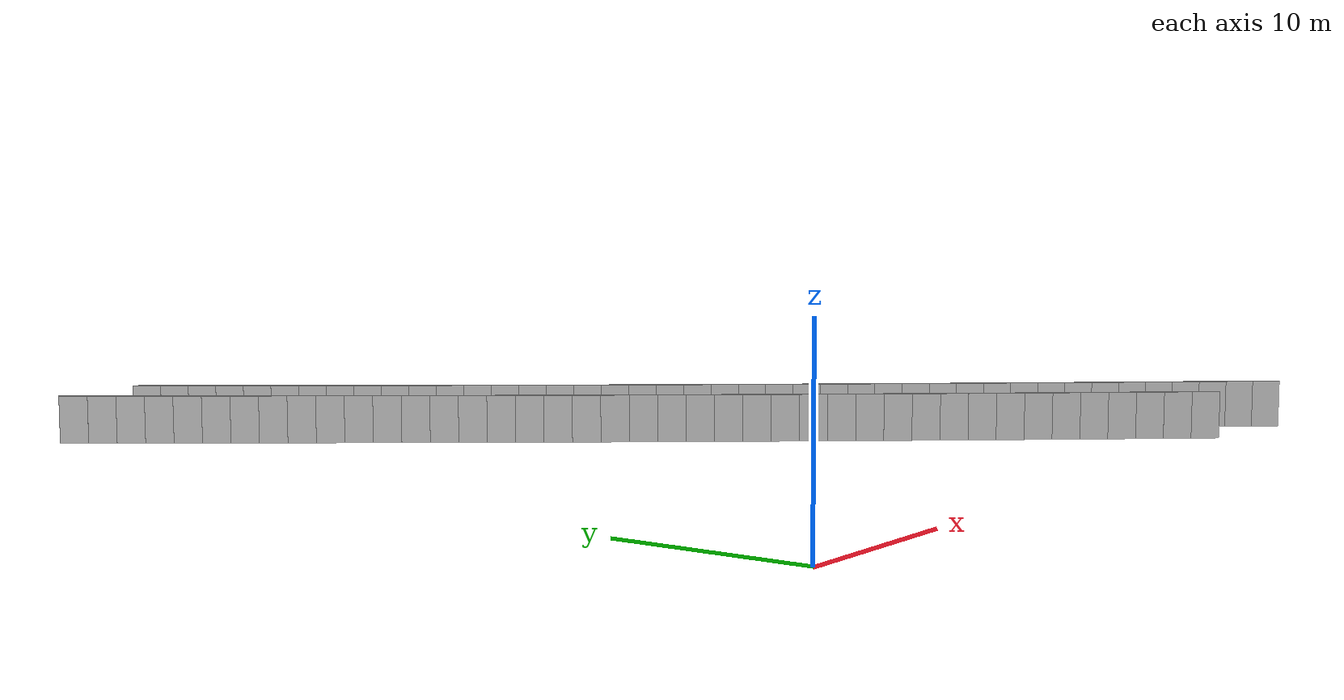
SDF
<?xml version="1.0" ?>
<sdf version="1.6">
  <model name="sps_0711">
    <pose frame="">0 0 0 0 -0 0</pose>
    <static>1</static>
    <self_collide>0</self_collide>
    <allow_auto_disable>0</allow_auto_disable>
    <link name="Wall8401">
      <kinematic>0</kinematic>
      <gravity>1</gravity>
      <self_collide>0</self_collide>
      <collision name="collision">
        <geometry>
          <box>
            <size>1.49896 0.15 2.5</size>
          </box>
        </geometry>
        <pose frame="">0 0 0 0 -0 0</pose>
      </collision>
      <visual name="visual">
        <geometry>
          <box>
            <size>1.49896 0.15 2.5</size>
          </box>
        </geometry>
        <pose frame="">0 0 0 0 -0 0</pose>
        <cast_shadows>1</cast_shadows>
        <transparency>0.0</transparency>
      </visual>
      <pose frame="">5.06295 49.0742 1.25 0 0 -0.961245</pose>
    </link>
    <link name="Wall8402">
      <kinematic>0</kinematic>
      <gravity>1</gravity>
      <self_collide>0</self_collide>
      <collision name="collision">
        <geometry>
          <box>
            <size>1.49904 0.15 2.5</size>
          </box>
        </geometry>
        <pose frame="">0 0 0 0 -0 0</pose>
      </collision>
      <visual name="visual">
        <geometry>
          <box>
            <size>1.49904 0.15 2.5</size>
          </box>
        </geometry>
        <pose frame="">0 0 0 0 -0 0</pose>
        <cast_shadows>1</cast_shadows>
        <transparency>0.0</transparency>
      </visual>
      <pose frame="">5.92205 47.8458 1.25 0 0 -0.959743</pose>
    </link>
    <link name="Wall8403">
      <kinematic>0</kinematic>
      <gravity>1</gravity>
      <self_collide>0</self_collide>
      <collision name="collision">
        <geometry>
          <box>
            <size>1.49888 0.15 2.5</size>
          </box>
        </geometry>
        <pose frame="">0 0 0 0 -0 0</pose>
      </collision>
      <visual name="visual">
        <geometry>
          <box>
            <size>1.49888 0.15 2.5</size>
          </box>
        </geometry>
        <pose frame="">0 0 0 0 -0 0</pose>
        <cast_shadows>1</cast_shadows>
        <transparency>0.0</transparency>
      </visual>
      <pose frame="">6.78295 46.6187 1.25 0 0 -0.958272</pose>
    </link>
    <link name="Wall8404">
      <kinematic>0</kinematic>
      <gravity>1</gravity>
      <self_collide>0</self_collide>
      <collision name="collision">
        <geometry>
          <box>
            <size>1.49908 0.15 2.5</size>
          </box>
        </geometry>
        <pose frame="">0 0 0 0 -0 0</pose>
      </collision>
      <visual name="visual">
        <geometry>
          <box>
            <size>1.49908 0.15 2.5</size>
          </box>
        </geometry>
        <pose frame="">0 0 0 0 -0 0</pose>
        <cast_shadows>1</cast_shadows>
        <transparency>0.0</transparency>
      </visual>
      <pose frame="">7.64584 45.393 1.25 0 0 -0.956525</pose>
    </link>
    <link name="Wall8405">
      <kinematic>0</kinematic>
      <gravity>1</gravity>
      <self_collide>0</self_collide>
      <collision name="collision">
        <geometry>
          <box>
            <size>1.4988 0.15 2.5</size>
          </box>
        </geometry>
        <pose frame="">0 0 0 0 -0 0</pose>
      </collision>
      <visual name="visual">
        <geometry>
          <box>
            <size>1.4988 0.15 2.5</size>
          </box>
        </geometry>
        <pose frame="">0 0 0 0 -0 0</pose>
        <cast_shadows>1</cast_shadows>
        <transparency>0.0</transparency>
      </visual>
      <pose frame="">8.51064 44.1687 1.25 0 0 -0.955096</pose>
    </link>
    <link name="Wall8406">
      <kinematic>0</kinematic>
      <gravity>1</gravity>
      <self_collide>0</self_collide>
      <collision name="collision">
        <geometry>
          <box>
            <size>1.49897 0.15 2.5</size>
          </box>
        </geometry>
        <pose frame="">0 0 0 0 -0 0</pose>
      </collision>
      <visual name="visual">
        <geometry>
          <box>
            <size>1.49897 0.15 2.5</size>
          </box>
        </geometry>
        <pose frame="">0 0 0 0 -0 0</pose>
        <cast_shadows>1</cast_shadows>
        <transparency>0.0</transparency>
      </visual>
      <pose frame="">9.37734 42.9458 1.25 0 0 -0.953382</pose>
    </link>
    <link name="Wall8407">
      <kinematic>0</kinematic>
      <gravity>1</gravity>
      <self_collide>0</self_collide>
      <collision name="collision">
        <geometry>
          <box>
            <size>1.49895 0.15 2.5</size>
          </box>
        </geometry>
        <pose frame="">0 0 0 0 -0 0</pose>
      </collision>
      <visual name="visual">
        <geometry>
          <box>
            <size>1.49895 0.15 2.5</size>
          </box>
        </geometry>
        <pose frame="">0 0 0 0 -0 0</pose>
        <cast_shadows>1</cast_shadows>
        <transparency>0.0</transparency>
      </visual>
      <pose frame="">10.2461 41.7243 1.25 0 0 -0.951721</pose>
    </link>
    <link name="Wall8408">
      <kinematic>0</kinematic>
      <gravity>1</gravity>
      <self_collide>0</self_collide>
      <collision name="collision">
        <geometry>
          <box>
            <size>1.49863 0.15 2.5</size>
          </box>
        </geometry>
        <pose frame="">0 0 0 0 -0 0</pose>
      </collision>
      <visual name="visual">
        <geometry>
          <box>
            <size>1.49863 0.15 2.5</size>
          </box>
        </geometry>
        <pose frame="">0 0 0 0 -0 0</pose>
        <cast_shadows>1</cast_shadows>
        <transparency>0.0</transparency>
      </visual>
      <pose frame="">11.1168 40.5043 1.25 0 0 -0.950268</pose>
    </link>
    <link name="Wall8409">
      <kinematic>0</kinematic>
      <gravity>1</gravity>
      <self_collide>0</self_collide>
      <collision name="collision">
        <geometry>
          <box>
            <size>1.49886 0.15 2.5</size>
          </box>
        </geometry>
        <pose frame="">0 0 0 0 -0 0</pose>
      </collision>
      <visual name="visual">
        <geometry>
          <box>
            <size>1.49886 0.15 2.5</size>
          </box>
        </geometry>
        <pose frame="">0 0 0 0 -0 0</pose>
        <cast_shadows>1</cast_shadows>
        <transparency>0.0</transparency>
      </visual>
      <pose frame="">11.9892 39.2857 1.25 0 0 -0.948578</pose>
    </link>
    <link name="Wall8410">
      <kinematic>0</kinematic>
      <gravity>1</gravity>
      <self_collide>0</self_collide>
      <collision name="collision">
        <geometry>
          <box>
            <size>1.49884 0.15 2.5</size>
          </box>
        </geometry>
        <pose frame="">0 0 0 0 -0 0</pose>
      </collision>
      <visual name="visual">
        <geometry>
          <box>
            <size>1.49884 0.15 2.5</size>
          </box>
        </geometry>
        <pose frame="">0 0 0 0 -0 0</pose>
        <cast_shadows>1</cast_shadows>
        <transparency>0.0</transparency>
      </visual>
      <pose frame="">12.8638 38.0684 1.25 0 0 -0.947063</pose>
    </link>
    <link name="Wall8411">
      <kinematic>0</kinematic>
      <gravity>1</gravity>
      <self_collide>0</self_collide>
      <collision name="collision">
        <geometry>
          <box>
            <size>1.49899 0.15 2.5</size>
          </box>
        </geometry>
        <pose frame="">0 0 0 0 -0 0</pose>
      </collision>
      <visual name="visual">
        <geometry>
          <box>
            <size>1.49899 0.15 2.5</size>
          </box>
        </geometry>
        <pose frame="">0 0 0 0 -0 0</pose>
        <cast_shadows>1</cast_shadows>
        <transparency>0.0</transparency>
      </visual>
      <pose frame="">13.7402 36.8524 1.25 0 0 -0.94553</pose>
    </link>
    <link name="Wall8412">
      <kinematic>0</kinematic>
      <gravity>1</gravity>
      <self_collide>0</self_collide>
      <collision name="collision">
        <geometry>
          <box>
            <size>1.49903 0.15 2.5</size>
          </box>
        </geometry>
        <pose frame="">0 0 0 0 -0 0</pose>
      </collision>
      <visual name="visual">
        <geometry>
          <box>
            <size>1.49903 0.15 2.5</size>
          </box>
        </geometry>
        <pose frame="">0 0 0 0 -0 0</pose>
        <cast_shadows>1</cast_shadows>
        <transparency>0.0</transparency>
      </visual>
      <pose frame="">14.6186 35.6377 1.25 0 0 -0.943892</pose>
    </link>
    <link name="Wall8413">
      <kinematic>0</kinematic>
      <gravity>1</gravity>
      <self_collide>0</self_collide>
      <collision name="collision">
        <geometry>
          <box>
            <size>1.49902 0.15 2.5</size>
          </box>
        </geometry>
        <pose frame="">0 0 0 0 -0 0</pose>
      </collision>
      <visual name="visual">
        <geometry>
          <box>
            <size>1.49902 0.15 2.5</size>
          </box>
        </geometry>
        <pose frame="">0 0 0 0 -0 0</pose>
        <cast_shadows>1</cast_shadows>
        <transparency>0.0</transparency>
      </visual>
      <pose frame="">15.4989 34.4244 1.25 0 0 -0.942377</pose>
    </link>
    <link name="Wall8414">
      <kinematic>0</kinematic>
      <gravity>1</gravity>
      <self_collide>0</self_collide>
      <collision name="collision">
        <geometry>
          <box>
            <size>1.49888 0.15 2.5</size>
          </box>
        </geometry>
        <pose frame="">0 0 0 0 -0 0</pose>
      </collision>
      <visual name="visual">
        <geometry>
          <box>
            <size>1.49888 0.15 2.5</size>
          </box>
        </geometry>
        <pose frame="">0 0 0 0 -0 0</pose>
        <cast_shadows>1</cast_shadows>
        <transparency>0.0</transparency>
      </visual>
      <pose frame="">16.381 33.2125 1.25 0 0 -0.940847</pose>
    </link>
    <link name="Wall8415">
      <kinematic>0</kinematic>
      <gravity>1</gravity>
      <self_collide>0</self_collide>
      <collision name="collision">
        <geometry>
          <box>
            <size>1.49879 0.15 2.5</size>
          </box>
        </geometry>
        <pose frame="">0 0 0 0 -0 0</pose>
      </collision>
      <visual name="visual">
        <geometry>
          <box>
            <size>1.49879 0.15 2.5</size>
          </box>
        </geometry>
        <pose frame="">0 0 0 0 -0 0</pose>
        <cast_shadows>1</cast_shadows>
        <transparency>0.0</transparency>
      </visual>
      <pose frame="">17.265 32.0021 1.25 0 0 -0.939138</pose>
    </link>
    <link name="Wall8416">
      <kinematic>0</kinematic>
      <gravity>1</gravity>
      <self_collide>0</self_collide>
      <collision name="collision">
        <geometry>
          <box>
            <size>1.49896 0.15 2.5</size>
          </box>
        </geometry>
        <pose frame="">0 0 0 0 -0 0</pose>
      </collision>
      <visual name="visual">
        <geometry>
          <box>
            <size>1.49896 0.15 2.5</size>
          </box>
        </geometry>
        <pose frame="">0 0 0 0 -0 0</pose>
        <cast_shadows>1</cast_shadows>
        <transparency>0.0</transparency>
      </visual>
      <pose frame="">18.151 30.7931 1.25 0 0 -0.937605</pose>
    </link>
    <link name="Wall8417">
      <kinematic>0</kinematic>
      <gravity>1</gravity>
      <self_collide>0</self_collide>
      <collision name="collision">
        <geometry>
          <box>
            <size>1.49911 0.15 2.5</size>
          </box>
        </geometry>
        <pose frame="">0 0 0 0 -0 0</pose>
      </collision>
      <visual name="visual">
        <geometry>
          <box>
            <size>1.49911 0.15 2.5</size>
          </box>
        </geometry>
        <pose frame="">0 0 0 0 -0 0</pose>
        <cast_shadows>1</cast_shadows>
        <transparency>0.0</transparency>
      </visual>
      <pose frame="">19.0388 29.5853 1.25 0 0 -0.936163</pose>
    </link>
    <link name="Wall8418">
      <kinematic>0</kinematic>
      <gravity>1</gravity>
      <self_collide>0</self_collide>
      <collision name="collision">
        <geometry>
          <box>
            <size>1.49903 0.15 2.5</size>
          </box>
        </geometry>
        <pose frame="">0 0 0 0 -0 0</pose>
      </collision>
      <visual name="visual">
        <geometry>
          <box>
            <size>1.49903 0.15 2.5</size>
          </box>
        </geometry>
        <pose frame="">0 0 0 0 -0 0</pose>
        <cast_shadows>1</cast_shadows>
        <transparency>0.0</transparency>
      </visual>
      <pose frame="">19.9286 28.3789 1.25 0 0 -0.934453</pose>
    </link>
    <link name="Wall8419">
      <kinematic>0</kinematic>
      <gravity>1</gravity>
      <self_collide>0</self_collide>
      <collision name="collision">
        <geometry>
          <box>
            <size>1.49894 0.15 2.5</size>
          </box>
        </geometry>
        <pose frame="">0 0 0 0 -0 0</pose>
      </collision>
      <visual name="visual">
        <geometry>
          <box>
            <size>1.49894 0.15 2.5</size>
          </box>
        </geometry>
        <pose frame="">0 0 0 0 -0 0</pose>
        <cast_shadows>1</cast_shadows>
        <transparency>0.0</transparency>
      </visual>
      <pose frame="">20.8204 27.174 1.25 0 0 -0.93289</pose>
    </link>
    <link name="Wall8420">
      <kinematic>0</kinematic>
      <gravity>1</gravity>
      <self_collide>0</self_collide>
      <collision name="collision">
        <geometry>
          <box>
            <size>1.49902 0.15 2.5</size>
          </box>
        </geometry>
        <pose frame="">0 0 0 0 -0 0</pose>
      </collision>
      <visual name="visual">
        <geometry>
          <box>
            <size>1.49902 0.15 2.5</size>
          </box>
        </geometry>
        <pose frame="">0 0 0 0 -0 0</pose>
        <cast_shadows>1</cast_shadows>
        <transparency>0.0</transparency>
      </visual>
      <pose frame="">21.714 25.9705 1.25 0 0 -0.93131</pose>
    </link>
    <link name="Wall8421">
      <kinematic>0</kinematic>
      <gravity>1</gravity>
      <self_collide>0</self_collide>
      <collision name="collision">
        <geometry>
          <box>
            <size>1.49895 0.15 2.5</size>
          </box>
        </geometry>
        <pose frame="">0 0 0 0 -0 0</pose>
      </collision>
      <visual name="visual">
        <geometry>
          <box>
            <size>1.49895 0.15 2.5</size>
          </box>
        </geometry>
        <pose frame="">0 0 0 0 -0 0</pose>
        <cast_shadows>1</cast_shadows>
        <transparency>0.0</transparency>
      </visual>
      <pose frame="">22.6095 24.7684 1.25 0 0 -0.929803</pose>
    </link>
    <link name="Wall8422">
      <kinematic>0</kinematic>
      <gravity>1</gravity>
      <self_collide>0</self_collide>
      <collision name="collision">
        <geometry>
          <box>
            <size>1.49907 0.15 2.5</size>
          </box>
        </geometry>
        <pose frame="">0 0 0 0 -0 0</pose>
      </collision>
      <visual name="visual">
        <geometry>
          <box>
            <size>1.49907 0.15 2.5</size>
          </box>
        </geometry>
        <pose frame="">0 0 0 0 -0 0</pose>
        <cast_shadows>1</cast_shadows>
        <transparency>0.0</transparency>
      </visual>
      <pose frame="">23.5069 23.5677 1.25 0 0 -0.928134</pose>
    </link>
    <link name="Wall8423">
      <kinematic>0</kinematic>
      <gravity>1</gravity>
      <self_collide>0</self_collide>
      <collision name="collision">
        <geometry>
          <box>
            <size>1.49893 0.15 2.5</size>
          </box>
        </geometry>
        <pose frame="">0 0 0 0 -0 0</pose>
      </collision>
      <visual name="visual">
        <geometry>
          <box>
            <size>1.49893 0.15 2.5</size>
          </box>
        </geometry>
        <pose frame="">0 0 0 0 -0 0</pose>
        <cast_shadows>1</cast_shadows>
        <transparency>0.0</transparency>
      </visual>
      <pose frame="">24.4063 22.3685 1.25 0 0 -0.926432</pose>
    </link>
    <link name="Wall8424">
      <kinematic>0</kinematic>
      <gravity>1</gravity>
      <self_collide>0</self_collide>
      <collision name="collision">
        <geometry>
          <box>
            <size>1.49892 0.15 2.5</size>
          </box>
        </geometry>
        <pose frame="">0 0 0 0 -0 0</pose>
      </collision>
      <visual name="visual">
        <geometry>
          <box>
            <size>1.49892 0.15 2.5</size>
          </box>
        </geometry>
        <pose frame="">0 0 0 0 -0 0</pose>
        <cast_shadows>1</cast_shadows>
        <transparency>0.0</transparency>
      </visual>
      <pose frame="">25.3075 21.1708 1.25 0 0 -0.92495</pose>
    </link>
    <link name="Wall8425">
      <kinematic>0</kinematic>
      <gravity>1</gravity>
      <self_collide>0</self_collide>
      <collision name="collision">
        <geometry>
          <box>
            <size>1.49889 0.15 2.5</size>
          </box>
        </geometry>
        <pose frame="">0 0 0 0 -0 0</pose>
      </collision>
      <visual name="visual">
        <geometry>
          <box>
            <size>1.49889 0.15 2.5</size>
          </box>
        </geometry>
        <pose frame="">0 0 0 0 -0 0</pose>
        <cast_shadows>1</cast_shadows>
        <transparency>0.0</transparency>
      </visual>
      <pose frame="">26.2107 19.9745 1.25 0 0 -0.923353</pose>
    </link>
    <link name="Wall8426">
      <kinematic>0</kinematic>
      <gravity>1</gravity>
      <self_collide>0</self_collide>
      <collision name="collision">
        <geometry>
          <box>
            <size>1.49885 0.15 2.5</size>
          </box>
        </geometry>
        <pose frame="">0 0 0 0 -0 0</pose>
      </collision>
      <visual name="visual">
        <geometry>
          <box>
            <size>1.49885 0.15 2.5</size>
          </box>
        </geometry>
        <pose frame="">0 0 0 0 -0 0</pose>
        <cast_shadows>1</cast_shadows>
        <transparency>0.0</transparency>
      </visual>
      <pose frame="">27.1156 18.7796 1.25 0 0 -0.921904</pose>
    </link>
    <link name="Wall8427">
      <kinematic>0</kinematic>
      <gravity>1</gravity>
      <self_collide>0</self_collide>
      <collision name="collision">
        <geometry>
          <box>
            <size>1.49884 0.15 2.5</size>
          </box>
        </geometry>
        <pose frame="">0 0 0 0 -0 0</pose>
      </collision>
      <visual name="visual">
        <geometry>
          <box>
            <size>1.49884 0.15 2.5</size>
          </box>
        </geometry>
        <pose frame="">0 0 0 0 -0 0</pose>
        <cast_shadows>1</cast_shadows>
        <transparency>0.0</transparency>
      </visual>
      <pose frame="">28.0224 17.5862 1.25 0 0 -0.920161</pose>
    </link>
    <link name="Wall8428">
      <kinematic>0</kinematic>
      <gravity>1</gravity>
      <self_collide>0</self_collide>
      <collision name="collision">
        <geometry>
          <box>
            <size>1.49906 0.15 2.5</size>
          </box>
        </geometry>
        <pose frame="">0 0 0 0 -0 0</pose>
      </collision>
      <visual name="visual">
        <geometry>
          <box>
            <size>1.49906 0.15 2.5</size>
          </box>
        </geometry>
        <pose frame="">0 0 0 0 -0 0</pose>
        <cast_shadows>1</cast_shadows>
        <transparency>0.0</transparency>
      </visual>
      <pose frame="">28.9312 16.3942 1.25 0 0 -0.918631</pose>
    </link>
    <link name="Wall8429">
      <kinematic>0</kinematic>
      <gravity>1</gravity>
      <self_collide>0</self_collide>
      <collision name="collision">
        <geometry>
          <box>
            <size>1.49902 0.15 2.5</size>
          </box>
        </geometry>
        <pose frame="">0 0 0 0 -0 0</pose>
      </collision>
      <visual name="visual">
        <geometry>
          <box>
            <size>1.49902 0.15 2.5</size>
          </box>
        </geometry>
        <pose frame="">0 0 0 0 -0 0</pose>
        <cast_shadows>1</cast_shadows>
        <transparency>0.0</transparency>
      </visual>
      <pose frame="">29.8418 15.2035 1.25 0 0 -0.917124</pose>
    </link>
    <link name="Wall8430">
      <kinematic>0</kinematic>
      <gravity>1</gravity>
      <self_collide>0</self_collide>
      <collision name="collision">
        <geometry>
          <box>
            <size>1.49886 0.15 2.5</size>
          </box>
        </geometry>
        <pose frame="">0 0 0 0 -0 0</pose>
      </collision>
      <visual name="visual">
        <geometry>
          <box>
            <size>1.49886 0.15 2.5</size>
          </box>
        </geometry>
        <pose frame="">0 0 0 0 -0 0</pose>
        <cast_shadows>1</cast_shadows>
        <transparency>0.0</transparency>
      </visual>
      <pose frame="">30.7544 14.0143 1.25 0 0 -0.915453</pose>
    </link>
    <link name="Wall8431">
      <kinematic>0</kinematic>
      <gravity>1</gravity>
      <self_collide>0</self_collide>
      <collision name="collision">
        <geometry>
          <box>
            <size>1.49895 0.15 2.5</size>
          </box>
        </geometry>
        <pose frame="">0 0 0 0 -0 0</pose>
      </collision>
      <visual name="visual">
        <geometry>
          <box>
            <size>1.49895 0.15 2.5</size>
          </box>
        </geometry>
        <pose frame="">0 0 0 0 -0 0</pose>
        <cast_shadows>1</cast_shadows>
        <transparency>0.0</transparency>
      </visual>
      <pose frame="">31.6688 12.8266 1.25 0 0 -0.913907</pose>
    </link>
    <link name="Wall8432">
      <kinematic>0</kinematic>
      <gravity>1</gravity>
      <self_collide>0</self_collide>
      <collision name="collision">
        <geometry>
          <box>
            <size>1.499 0.15 2.5</size>
          </box>
        </geometry>
        <pose frame="">0 0 0 0 -0 0</pose>
      </collision>
      <visual name="visual">
        <geometry>
          <box>
            <size>1.499 0.15 2.5</size>
          </box>
        </geometry>
        <pose frame="">0 0 0 0 -0 0</pose>
        <cast_shadows>1</cast_shadows>
        <transparency>0.0</transparency>
      </visual>
      <pose frame="">32.585 11.6403 1.25 0 0 -0.912335</pose>
    </link>
    <link name="Wall8433">
      <kinematic>0</kinematic>
      <gravity>1</gravity>
      <self_collide>0</self_collide>
      <collision name="collision">
        <geometry>
          <box>
            <size>1.49897 0.15 2.5</size>
          </box>
        </geometry>
        <pose frame="">0 0 0 0 -0 0</pose>
      </collision>
      <visual name="visual">
        <geometry>
          <box>
            <size>1.49897 0.15 2.5</size>
          </box>
        </geometry>
        <pose frame="">0 0 0 0 -0 0</pose>
        <cast_shadows>1</cast_shadows>
        <transparency>0.0</transparency>
      </visual>
      <pose frame="">33.5032 10.4554 1.25 0 0 -0.910828</pose>
    </link>
    <link name="Wall8434">
      <kinematic>0</kinematic>
      <gravity>1</gravity>
      <self_collide>0</self_collide>
      <collision name="collision">
        <geometry>
          <box>
            <size>1.49892 0.15 2.5</size>
          </box>
        </geometry>
        <pose frame="">0 0 0 0 -0 0</pose>
      </collision>
      <visual name="visual">
        <geometry>
          <box>
            <size>1.49892 0.15 2.5</size>
          </box>
        </geometry>
        <pose frame="">0 0 0 0 -0 0</pose>
        <cast_shadows>1</cast_shadows>
        <transparency>0.0</transparency>
      </visual>
      <pose frame="">34.4231 9.27199 1.25 0 0 -0.90915</pose>
    </link>
    <link name="Wall8435">
      <kinematic>0</kinematic>
      <gravity>1</gravity>
      <self_collide>0</self_collide>
      <collision name="collision">
        <geometry>
          <box>
            <size>1.49878 0.15 2.5</size>
          </box>
        </geometry>
        <pose frame="">0 0 0 0 -0 0</pose>
      </collision>
      <visual name="visual">
        <geometry>
          <box>
            <size>1.49878 0.15 2.5</size>
          </box>
        </geometry>
        <pose frame="">0 0 0 0 -0 0</pose>
        <cast_shadows>1</cast_shadows>
        <transparency>0.0</transparency>
      </visual>
      <pose frame="">35.3451 8.09019 1.25 0 0 -0.907478</pose>
    </link>
    <link name="Wall8436">
      <kinematic>0</kinematic>
      <gravity>1</gravity>
      <self_collide>0</self_collide>
      <collision name="collision">
        <geometry>
          <box>
            <size>1.49892 0.15 2.5</size>
          </box>
        </geometry>
        <pose frame="">0 0 0 0 -0 0</pose>
      </collision>
      <visual name="visual">
        <geometry>
          <box>
            <size>1.49892 0.15 2.5</size>
          </box>
        </geometry>
        <pose frame="">0 0 0 0 -0 0</pose>
        <cast_shadows>1</cast_shadows>
        <transparency>0.0</transparency>
      </visual>
      <pose frame="">36.2688 6.9098 1.25 0 0 -0.906103</pose>
    </link>
    <link name="Wall8437">
      <kinematic>0</kinematic>
      <gravity>1</gravity>
      <self_collide>0</self_collide>
      <collision name="collision">
        <geometry>
          <box>
            <size>1.49895 0.15 2.5</size>
          </box>
        </geometry>
        <pose frame="">0 0 0 0 -0 0</pose>
      </collision>
      <visual name="visual">
        <geometry>
          <box>
            <size>1.49895 0.15 2.5</size>
          </box>
        </geometry>
        <pose frame="">0 0 0 0 -0 0</pose>
        <cast_shadows>1</cast_shadows>
        <transparency>0.0</transparency>
      </visual>
      <pose frame="">37.1944 5.73079 1.25 0 0 -0.904361</pose>
    </link>
    <link name="Wall8438">
      <kinematic>0</kinematic>
      <gravity>1</gravity>
      <self_collide>0</self_collide>
      <collision name="collision">
        <geometry>
          <box>
            <size>1.49875 0.15 2.5</size>
          </box>
        </geometry>
        <pose frame="">0 0 0 0 -0 0</pose>
      </collision>
      <visual name="visual">
        <geometry>
          <box>
            <size>1.49875 0.15 2.5</size>
          </box>
        </geometry>
        <pose frame="">0 0 0 0 -0 0</pose>
        <cast_shadows>1</cast_shadows>
        <transparency>0.0</transparency>
      </visual>
      <pose frame="">38.1218 4.5533 1.25 0 0 -0.902956</pose>
    </link>
    <link name="Wall8439">
      <kinematic>0</kinematic>
      <gravity>1</gravity>
      <self_collide>0</self_collide>
      <collision name="collision">
        <geometry>
          <box>
            <size>1.49909 0.15 2.5</size>
          </box>
        </geometry>
        <pose frame="">0 0 0 0 -0 0</pose>
      </collision>
      <visual name="visual">
        <geometry>
          <box>
            <size>1.49909 0.15 2.5</size>
          </box>
        </geometry>
        <pose frame="">0 0 0 0 -0 0</pose>
        <cast_shadows>1</cast_shadows>
        <transparency>0.0</transparency>
      </visual>
      <pose frame="">39.051 3.37721 1.25 0 0 -0.901219</pose>
    </link>
    <link name="Wall8440">
      <kinematic>0</kinematic>
      <gravity>1</gravity>
      <self_collide>0</self_collide>
      <collision name="collision">
        <geometry>
          <box>
            <size>1.49884 0.15 2.5</size>
          </box>
        </geometry>
        <pose frame="">0 0 0 0 -0 0</pose>
      </collision>
      <visual name="visual">
        <geometry>
          <box>
            <size>1.49884 0.15 2.5</size>
          </box>
        </geometry>
        <pose frame="">0 0 0 0 -0 0</pose>
        <cast_shadows>1</cast_shadows>
        <transparency>0.0</transparency>
      </visual>
      <pose frame="">39.9823 2.20259 1.25 0 0 -0.899731</pose>
    </link>
    <link name="Wall8441">
      <kinematic>0</kinematic>
      <gravity>1</gravity>
      <self_collide>0</self_collide>
      <collision name="collision">
        <geometry>
          <box>
            <size>1.49913 0.15 2.5</size>
          </box>
        </geometry>
        <pose frame="">0 0 0 0 -0 0</pose>
      </collision>
      <visual name="visual">
        <geometry>
          <box>
            <size>1.49913 0.15 2.5</size>
          </box>
        </geometry>
        <pose frame="">0 0 0 0 -0 0</pose>
        <cast_shadows>1</cast_shadows>
        <transparency>0.0</transparency>
      </visual>
      <pose frame="">40.9153 1.02937 1.25 0 0 -0.898173</pose>
    </link>
    <link name="Wall9484">
      <kinematic>0</kinematic>
      <gravity>1</gravity>
      <self_collide>0</self_collide>
      <collision name="collision">
        <geometry>
          <box>
            <size>1.49241 0.15 2.5</size>
          </box>
        </geometry>
        <pose frame="">0 0 0 0 -0 0</pose>
      </collision>
      <visual name="visual">
        <geometry>
          <box>
            <size>1.49241 0.15 2.5</size>
          </box>
        </geometry>
        <pose frame="">0 0 0 0 -0 0</pose>
        <cast_shadows>1</cast_shadows>
        <transparency>0.0</transparency>
      </visual>
      <pose frame="">10.1698 48.9998 1.25 0 0 -0.958177</pose>
    </link>
    <link name="Wall9485">
      <kinematic>0</kinematic>
      <gravity>1</gravity>
      <self_collide>0</self_collide>
      <collision name="collision">
        <geometry>
          <box>
            <size>1.49261 0.15 2.5</size>
          </box>
        </geometry>
        <pose frame="">0 0 0 0 -0 0</pose>
      </collision>
      <visual name="visual">
        <geometry>
          <box>
            <size>1.49261 0.15 2.5</size>
          </box>
        </geometry>
        <pose frame="">0 0 0 0 -0 0</pose>
        <cast_shadows>1</cast_shadows>
        <transparency>0.0</transparency>
      </visual>
      <pose frame="">11.029 47.7794 1.25 0 0 -0.95657</pose>
    </link>
    <link name="Wall9486">
      <kinematic>0</kinematic>
      <gravity>1</gravity>
      <self_collide>0</self_collide>
      <collision name="collision">
        <geometry>
          <box>
            <size>1.49233 0.15 2.5</size>
          </box>
        </geometry>
        <pose frame="">0 0 0 0 -0 0</pose>
      </collision>
      <visual name="visual">
        <geometry>
          <box>
            <size>1.49233 0.15 2.5</size>
          </box>
        </geometry>
        <pose frame="">0 0 0 0 -0 0</pose>
        <cast_shadows>1</cast_shadows>
        <transparency>0.0</transparency>
      </visual>
      <pose frame="">11.8901 46.5604 1.25 0 0 -0.954987</pose>
    </link>
    <link name="Wall9487">
      <kinematic>0</kinematic>
      <gravity>1</gravity>
      <self_collide>0</self_collide>
      <collision name="collision">
        <geometry>
          <box>
            <size>1.49255 0.15 2.5</size>
          </box>
        </geometry>
        <pose frame="">0 0 0 0 -0 0</pose>
      </collision>
      <visual name="visual">
        <geometry>
          <box>
            <size>1.49255 0.15 2.5</size>
          </box>
        </geometry>
        <pose frame="">0 0 0 0 -0 0</pose>
        <cast_shadows>1</cast_shadows>
        <transparency>0.0</transparency>
      </visual>
      <pose frame="">12.7531 45.3428 1.25 0 0 -0.953437</pose>
    </link>
    <link name="Wall9488">
      <kinematic>0</kinematic>
      <gravity>1</gravity>
      <self_collide>0</self_collide>
      <collision name="collision">
        <geometry>
          <box>
            <size>1.49234 0.15 2.5</size>
          </box>
        </geometry>
        <pose frame="">0 0 0 0 -0 0</pose>
      </collision>
      <visual name="visual">
        <geometry>
          <box>
            <size>1.49234 0.15 2.5</size>
          </box>
        </geometry>
        <pose frame="">0 0 0 0 -0 0</pose>
        <cast_shadows>1</cast_shadows>
        <transparency>0.0</transparency>
      </visual>
      <pose frame="">13.6181 44.1266 1.25 0 0 -0.951731</pose>
    </link>
    <link name="Wall9489">
      <kinematic>0</kinematic>
      <gravity>1</gravity>
      <self_collide>0</self_collide>
      <collision name="collision">
        <geometry>
          <box>
            <size>1.49241 0.15 2.5</size>
          </box>
        </geometry>
        <pose frame="">0 0 0 0 -0 0</pose>
      </collision>
      <visual name="visual">
        <geometry>
          <box>
            <size>1.49241 0.15 2.5</size>
          </box>
        </geometry>
        <pose frame="">0 0 0 0 -0 0</pose>
        <cast_shadows>1</cast_shadows>
        <transparency>0.0</transparency>
      </visual>
      <pose frame="">14.4849 42.9118 1.25 0 0 -0.950257</pose>
    </link>
    <link name="Wall9490">
      <kinematic>0</kinematic>
      <gravity>1</gravity>
      <self_collide>0</self_collide>
      <collision name="collision">
        <geometry>
          <box>
            <size>1.49238 0.15 2.5</size>
          </box>
        </geometry>
        <pose frame="">0 0 0 0 -0 0</pose>
      </collision>
      <visual name="visual">
        <geometry>
          <box>
            <size>1.49238 0.15 2.5</size>
          </box>
        </geometry>
        <pose frame="">0 0 0 0 -0 0</pose>
        <cast_shadows>1</cast_shadows>
        <transparency>0.0</transparency>
      </visual>
      <pose frame="">15.3537 41.6983 1.25 0 0 -0.948735</pose>
    </link>
    <link name="Wall9491">
      <kinematic>0</kinematic>
      <gravity>1</gravity>
      <self_collide>0</self_collide>
      <collision name="collision">
        <geometry>
          <box>
            <size>1.49193 0.15 2.5</size>
          </box>
        </geometry>
        <pose frame="">0 0 0 0 -0 0</pose>
      </collision>
      <visual name="visual">
        <geometry>
          <box>
            <size>1.49193 0.15 2.5</size>
          </box>
        </geometry>
        <pose frame="">0 0 0 0 -0 0</pose>
        <cast_shadows>1</cast_shadows>
        <transparency>0.0</transparency>
      </visual>
      <pose frame="">16.2242 40.4864 1.25 0 0 -0.947056</pose>
    </link>
    <link name="Wall9492">
      <kinematic>0</kinematic>
      <gravity>1</gravity>
      <self_collide>0</self_collide>
      <collision name="collision">
        <geometry>
          <box>
            <size>1.49237 0.15 2.5</size>
          </box>
        </geometry>
        <pose frame="">0 0 0 0 -0 0</pose>
      </collision>
      <visual name="visual">
        <geometry>
          <box>
            <size>1.49237 0.15 2.5</size>
          </box>
        </geometry>
        <pose frame="">0 0 0 0 -0 0</pose>
        <cast_shadows>1</cast_shadows>
        <transparency>0.0</transparency>
      </visual>
      <pose frame="">17.0967 39.2759 1.25 0 0 -0.945455</pose>
    </link>
    <link name="Wall9493">
      <kinematic>0</kinematic>
      <gravity>1</gravity>
      <self_collide>0</self_collide>
      <collision name="collision">
        <geometry>
          <box>
            <size>1.49232 0.15 2.5</size>
          </box>
        </geometry>
        <pose frame="">0 0 0 0 -0 0</pose>
      </collision>
      <visual name="visual">
        <geometry>
          <box>
            <size>1.49232 0.15 2.5</size>
          </box>
        </geometry>
        <pose frame="">0 0 0 0 -0 0</pose>
        <cast_shadows>1</cast_shadows>
        <transparency>0.0</transparency>
      </visual>
      <pose frame="">17.9712 38.0666 1.25 0 0 -0.943967</pose>
    </link>
    <link name="Wall9494">
      <kinematic>0</kinematic>
      <gravity>1</gravity>
      <self_collide>0</self_collide>
      <collision name="collision">
        <geometry>
          <box>
            <size>1.49281 0.15 2.5</size>
          </box>
        </geometry>
        <pose frame="">0 0 0 0 -0 0</pose>
      </collision>
      <visual name="visual">
        <geometry>
          <box>
            <size>1.49281 0.15 2.5</size>
          </box>
        </geometry>
        <pose frame="">0 0 0 0 -0 0</pose>
        <cast_shadows>1</cast_shadows>
        <transparency>0.0</transparency>
      </visual>
      <pose frame="">18.8476 36.8585 1.25 0 0 -0.942334</pose>
    </link>
    <link name="Wall9495">
      <kinematic>0</kinematic>
      <gravity>1</gravity>
      <self_collide>0</self_collide>
      <collision name="collision">
        <geometry>
          <box>
            <size>1.49231 0.15 2.5</size>
          </box>
        </geometry>
        <pose frame="">0 0 0 0 -0 0</pose>
      </collision>
      <visual name="visual">
        <geometry>
          <box>
            <size>1.49231 0.15 2.5</size>
          </box>
        </geometry>
        <pose frame="">0 0 0 0 -0 0</pose>
        <cast_shadows>1</cast_shadows>
        <transparency>0.0</transparency>
      </visual>
      <pose frame="">19.7261 35.6518 1.25 0 0 -0.940776</pose>
    </link>
    <link name="Wall9496">
      <kinematic>0</kinematic>
      <gravity>1</gravity>
      <self_collide>0</self_collide>
      <collision name="collision">
        <geometry>
          <box>
            <size>1.49233 0.15 2.5</size>
          </box>
        </geometry>
        <pose frame="">0 0 0 0 -0 0</pose>
      </collision>
      <visual name="visual">
        <geometry>
          <box>
            <size>1.49233 0.15 2.5</size>
          </box>
        </geometry>
        <pose frame="">0 0 0 0 -0 0</pose>
        <cast_shadows>1</cast_shadows>
        <transparency>0.0</transparency>
      </visual>
      <pose frame="">20.6063 34.4467 1.25 0 0 -0.939164</pose>
    </link>
    <link name="Wall9497">
      <kinematic>0</kinematic>
      <gravity>1</gravity>
      <self_collide>0</self_collide>
      <collision name="collision">
        <geometry>
          <box>
            <size>1.49243 0.15 2.5</size>
          </box>
        </geometry>
        <pose frame="">0 0 0 0 -0 0</pose>
      </collision>
      <visual name="visual">
        <geometry>
          <box>
            <size>1.49243 0.15 2.5</size>
          </box>
        </geometry>
        <pose frame="">0 0 0 0 -0 0</pose>
        <cast_shadows>1</cast_shadows>
        <transparency>0.0</transparency>
      </visual>
      <pose frame="">21.4883 33.2429 1.25 0 0 -0.937691</pose>
    </link>
    <link name="Wall9498">
      <kinematic>0</kinematic>
      <gravity>1</gravity>
      <self_collide>0</self_collide>
      <collision name="collision">
        <geometry>
          <box>
            <size>1.49234 0.15 2.5</size>
          </box>
        </geometry>
        <pose frame="">0 0 0 0 -0 0</pose>
      </collision>
      <visual name="visual">
        <geometry>
          <box>
            <size>1.49234 0.15 2.5</size>
          </box>
        </geometry>
        <pose frame="">0 0 0 0 -0 0</pose>
        <cast_shadows>1</cast_shadows>
        <transparency>0.0</transparency>
      </visual>
      <pose frame="">22.3723 32.0405 1.25 0 0 -0.935974</pose>
    </link>
    <link name="Wall9499">
      <kinematic>0</kinematic>
      <gravity>1</gravity>
      <self_collide>0</self_collide>
      <collision name="collision">
        <geometry>
          <box>
            <size>1.4925 0.15 2.5</size>
          </box>
        </geometry>
        <pose frame="">0 0 0 0 -0 0</pose>
      </collision>
      <visual name="visual">
        <geometry>
          <box>
            <size>1.4925 0.15 2.5</size>
          </box>
        </geometry>
        <pose frame="">0 0 0 0 -0 0</pose>
        <cast_shadows>1</cast_shadows>
        <transparency>0.0</transparency>
      </visual>
      <pose frame="">23.2583 30.8395 1.25 0 0 -0.934525</pose>
    </link>
    <link name="Wall9500">
      <kinematic>0</kinematic>
      <gravity>1</gravity>
      <self_collide>0</self_collide>
      <collision name="collision">
        <geometry>
          <box>
            <size>1.49233 0.15 2.5</size>
          </box>
        </geometry>
        <pose frame="">0 0 0 0 -0 0</pose>
      </collision>
      <visual name="visual">
        <geometry>
          <box>
            <size>1.49233 0.15 2.5</size>
          </box>
        </geometry>
        <pose frame="">0 0 0 0 -0 0</pose>
        <cast_shadows>1</cast_shadows>
        <transparency>0.0</transparency>
      </visual>
      <pose frame="">24.1461 29.6399 1.25 0 0 -0.932817</pose>
    </link>
    <link name="Wall9501">
      <kinematic>0</kinematic>
      <gravity>1</gravity>
      <self_collide>0</self_collide>
      <collision name="collision">
        <geometry>
          <box>
            <size>1.49241 0.15 2.5</size>
          </box>
        </geometry>
        <pose frame="">0 0 0 0 -0 0</pose>
      </collision>
      <visual name="visual">
        <geometry>
          <box>
            <size>1.49241 0.15 2.5</size>
          </box>
        </geometry>
        <pose frame="">0 0 0 0 -0 0</pose>
        <cast_shadows>1</cast_shadows>
        <transparency>0.0</transparency>
      </visual>
      <pose frame="">25.0358 28.4417 1.25 0 0 -0.931377</pose>
    </link>
    <link name="Wall9502">
      <kinematic>0</kinematic>
      <gravity>1</gravity>
      <self_collide>0</self_collide>
      <collision name="collision">
        <geometry>
          <box>
            <size>1.49257 0.15 2.5</size>
          </box>
        </geometry>
        <pose frame="">0 0 0 0 -0 0</pose>
      </collision>
      <visual name="visual">
        <geometry>
          <box>
            <size>1.49257 0.15 2.5</size>
          </box>
        </geometry>
        <pose frame="">0 0 0 0 -0 0</pose>
        <cast_shadows>1</cast_shadows>
        <transparency>0.0</transparency>
      </visual>
      <pose frame="">25.9274 27.2448 1.25 0 0 -0.929724</pose>
    </link>
    <link name="Wall9503">
      <kinematic>0</kinematic>
      <gravity>1</gravity>
      <self_collide>0</self_collide>
      <collision name="collision">
        <geometry>
          <box>
            <size>1.49227 0.15 2.5</size>
          </box>
        </geometry>
        <pose frame="">0 0 0 0 -0 0</pose>
      </collision>
      <visual name="visual">
        <geometry>
          <box>
            <size>1.49227 0.15 2.5</size>
          </box>
        </geometry>
        <pose frame="">0 0 0 0 -0 0</pose>
        <cast_shadows>1</cast_shadows>
        <transparency>0.0</transparency>
      </visual>
      <pose frame="">26.8209 26.0494 1.25 0 0 -0.928146</pose>
    </link>
    <link name="Wall9504">
      <kinematic>0</kinematic>
      <gravity>1</gravity>
      <self_collide>0</self_collide>
      <collision name="collision">
        <geometry>
          <box>
            <size>1.49259 0.15 2.5</size>
          </box>
        </geometry>
        <pose frame="">0 0 0 0 -0 0</pose>
      </collision>
      <visual name="visual">
        <geometry>
          <box>
            <size>1.49259 0.15 2.5</size>
          </box>
        </geometry>
        <pose frame="">0 0 0 0 -0 0</pose>
        <cast_shadows>1</cast_shadows>
        <transparency>0.0</transparency>
      </visual>
      <pose frame="">27.7162 24.8554 1.25 0 0 -0.926567</pose>
    </link>
    <link name="Wall9505">
      <kinematic>0</kinematic>
      <gravity>1</gravity>
      <self_collide>0</self_collide>
      <collision name="collision">
        <geometry>
          <box>
            <size>1.49234 0.15 2.5</size>
          </box>
        </geometry>
        <pose frame="">0 0 0 0 -0 0</pose>
      </collision>
      <visual name="visual">
        <geometry>
          <box>
            <size>1.49234 0.15 2.5</size>
          </box>
        </geometry>
        <pose frame="">0 0 0 0 -0 0</pose>
        <cast_shadows>1</cast_shadows>
        <transparency>0.0</transparency>
      </visual>
      <pose frame="">28.6135 23.6628 1.25 0 0 -0.924956</pose>
    </link>
    <link name="Wall9506">
      <kinematic>0</kinematic>
      <gravity>1</gravity>
      <self_collide>0</self_collide>
      <collision name="collision">
        <geometry>
          <box>
            <size>1.49248 0.15 2.5</size>
          </box>
        </geometry>
        <pose frame="">0 0 0 0 -0 0</pose>
      </collision>
      <visual name="visual">
        <geometry>
          <box>
            <size>1.49248 0.15 2.5</size>
          </box>
        </geometry>
        <pose frame="">0 0 0 0 -0 0</pose>
        <cast_shadows>1</cast_shadows>
        <transparency>0.0</transparency>
      </visual>
      <pose frame="">29.5127 22.4717 1.25 0 0 -0.923337</pose>
    </link>
    <link name="Wall9507">
      <kinematic>0</kinematic>
      <gravity>1</gravity>
      <self_collide>0</self_collide>
      <collision name="collision">
        <geometry>
          <box>
            <size>1.49238 0.15 2.5</size>
          </box>
        </geometry>
        <pose frame="">0 0 0 0 -0 0</pose>
      </collision>
      <visual name="visual">
        <geometry>
          <box>
            <size>1.49238 0.15 2.5</size>
          </box>
        </geometry>
        <pose frame="">0 0 0 0 -0 0</pose>
        <cast_shadows>1</cast_shadows>
        <transparency>0.0</transparency>
      </visual>
      <pose frame="">30.4138 21.282 1.25 0 0 -0.921799</pose>
    </link>
    <link name="Wall9508">
      <kinematic>0</kinematic>
      <gravity>1</gravity>
      <self_collide>0</self_collide>
      <collision name="collision">
        <geometry>
          <box>
            <size>1.49227 0.15 2.5</size>
          </box>
        </geometry>
        <pose frame="">0 0 0 0 -0 0</pose>
      </collision>
      <visual name="visual">
        <geometry>
          <box>
            <size>1.49227 0.15 2.5</size>
          </box>
        </geometry>
        <pose frame="">0 0 0 0 -0 0</pose>
        <cast_shadows>1</cast_shadows>
        <transparency>0.0</transparency>
      </visual>
      <pose frame="">31.3167 20.0938 1.25 0 0 -0.920203</pose>
    </link>
    <link name="Wall9509">
      <kinematic>0</kinematic>
      <gravity>1</gravity>
      <self_collide>0</self_collide>
      <collision name="collision">
        <geometry>
          <box>
            <size>1.49248 0.15 2.5</size>
          </box>
        </geometry>
        <pose frame="">0 0 0 0 -0 0</pose>
      </collision>
      <visual name="visual">
        <geometry>
          <box>
            <size>1.49248 0.15 2.5</size>
          </box>
        </geometry>
        <pose frame="">0 0 0 0 -0 0</pose>
        <cast_shadows>1</cast_shadows>
        <transparency>0.0</transparency>
      </visual>
      <pose frame="">32.2215 18.907 1.25 0 0 -0.918609</pose>
    </link>
    <link name="Wall9510">
      <kinematic>0</kinematic>
      <gravity>1</gravity>
      <self_collide>0</self_collide>
      <collision name="collision">
        <geometry>
          <box>
            <size>1.49234 0.15 2.5</size>
          </box>
        </geometry>
        <pose frame="">0 0 0 0 -0 0</pose>
      </collision>
      <visual name="visual">
        <geometry>
          <box>
            <size>1.49234 0.15 2.5</size>
          </box>
        </geometry>
        <pose frame="">0 0 0 0 -0 0</pose>
        <cast_shadows>1</cast_shadows>
        <transparency>0.0</transparency>
      </visual>
      <pose frame="">33.1283 17.7216 1.25 0 0 -0.917046</pose>
    </link>
    <link name="Wall9511">
      <kinematic>0</kinematic>
      <gravity>1</gravity>
      <self_collide>0</self_collide>
      <collision name="collision">
        <geometry>
          <box>
            <size>1.49249 0.15 2.5</size>
          </box>
        </geometry>
        <pose frame="">0 0 0 0 -0 0</pose>
      </collision>
      <visual name="visual">
        <geometry>
          <box>
            <size>1.49249 0.15 2.5</size>
          </box>
        </geometry>
        <pose frame="">0 0 0 0 -0 0</pose>
        <cast_shadows>1</cast_shadows>
        <transparency>0.0</transparency>
      </visual>
      <pose frame="">34.0368 16.5376 1.25 0 0 -0.915574</pose>
    </link>
    <link name="Wall9512">
      <kinematic>0</kinematic>
      <gravity>1</gravity>
      <self_collide>0</self_collide>
      <collision name="collision">
        <geometry>
          <box>
            <size>1.49226 0.15 2.5</size>
          </box>
        </geometry>
        <pose frame="">0 0 0 0 -0 0</pose>
      </collision>
      <visual name="visual">
        <geometry>
          <box>
            <size>1.49226 0.15 2.5</size>
          </box>
        </geometry>
        <pose frame="">0 0 0 0 -0 0</pose>
        <cast_shadows>1</cast_shadows>
        <transparency>0.0</transparency>
      </visual>
      <pose frame="">34.9471 15.355 1.25 0 0 -0.913961</pose>
    </link>
    <link name="Wall9513">
      <kinematic>0</kinematic>
      <gravity>1</gravity>
      <self_collide>0</self_collide>
      <collision name="collision">
        <geometry>
          <box>
            <size>1.49243 0.15 2.5</size>
          </box>
        </geometry>
        <pose frame="">0 0 0 0 -0 0</pose>
      </collision>
      <visual name="visual">
        <geometry>
          <box>
            <size>1.49243 0.15 2.5</size>
          </box>
        </geometry>
        <pose frame="">0 0 0 0 -0 0</pose>
        <cast_shadows>1</cast_shadows>
        <transparency>0.0</transparency>
      </visual>
      <pose frame="">35.8593 14.1739 1.25 0 0 -0.912343</pose>
    </link>
    <link name="Wall9514">
      <kinematic>0</kinematic>
      <gravity>1</gravity>
      <self_collide>0</self_collide>
      <collision name="collision">
        <geometry>
          <box>
            <size>1.49251 0.15 2.5</size>
          </box>
        </geometry>
        <pose frame="">0 0 0 0 -0 0</pose>
      </collision>
      <visual name="visual">
        <geometry>
          <box>
            <size>1.49251 0.15 2.5</size>
          </box>
        </geometry>
        <pose frame="">0 0 0 0 -0 0</pose>
        <cast_shadows>1</cast_shadows>
        <transparency>0.0</transparency>
      </visual>
      <pose frame="">36.7735 12.9942 1.25 0 0 -0.910732</pose>
    </link>
    <link name="Wall9515">
      <kinematic>0</kinematic>
      <gravity>1</gravity>
      <self_collide>0</self_collide>
      <collision name="collision">
        <geometry>
          <box>
            <size>1.49253 0.15 2.5</size>
          </box>
        </geometry>
        <pose frame="">0 0 0 0 -0 0</pose>
      </collision>
      <visual name="visual">
        <geometry>
          <box>
            <size>1.49253 0.15 2.5</size>
          </box>
        </geometry>
        <pose frame="">0 0 0 0 -0 0</pose>
        <cast_shadows>1</cast_shadows>
        <transparency>0.0</transparency>
      </visual>
      <pose frame="">37.6895 11.8159 1.25 0 0 -0.909186</pose>
    </link>
    <link name="Wall9516">
      <kinematic>0</kinematic>
      <gravity>1</gravity>
      <self_collide>0</self_collide>
      <collision name="collision">
        <geometry>
          <box>
            <size>1.49224 0.15 2.5</size>
          </box>
        </geometry>
        <pose frame="">0 0 0 0 -0 0</pose>
      </collision>
      <visual name="visual">
        <geometry>
          <box>
            <size>1.49224 0.15 2.5</size>
          </box>
        </geometry>
        <pose frame="">0 0 0 0 -0 0</pose>
        <cast_shadows>1</cast_shadows>
        <transparency>0.0</transparency>
      </visual>
      <pose frame="">38.6074 10.6391 1.25 0 0 -0.907637</pose>
    </link>
    <link name="Wall9517">
      <kinematic>0</kinematic>
      <gravity>1</gravity>
      <self_collide>0</self_collide>
      <collision name="collision">
        <geometry>
          <box>
            <size>1.4925 0.15 2.5</size>
          </box>
        </geometry>
        <pose frame="">0 0 0 0 -0 0</pose>
      </collision>
      <visual name="visual">
        <geometry>
          <box>
            <size>1.4925 0.15 2.5</size>
          </box>
        </geometry>
        <pose frame="">0 0 0 0 -0 0</pose>
        <cast_shadows>1</cast_shadows>
        <transparency>0.0</transparency>
      </visual>
      <pose frame="">39.5271 9.46379 1.25 0 0 -0.905955</pose>
    </link>
    <link name="Wall9518">
      <kinematic>0</kinematic>
      <gravity>1</gravity>
      <self_collide>0</self_collide>
      <collision name="collision">
        <geometry>
          <box>
            <size>1.49222 0.15 2.5</size>
          </box>
        </geometry>
        <pose frame="">0 0 0 0 -0 0</pose>
      </collision>
      <visual name="visual">
        <geometry>
          <box>
            <size>1.49222 0.15 2.5</size>
          </box>
        </geometry>
        <pose frame="">0 0 0 0 -0 0</pose>
        <cast_shadows>1</cast_shadows>
        <transparency>0.0</transparency>
      </visual>
      <pose frame="">40.4487 8.28999 1.25 0 0 -0.904404</pose>
    </link>
    <link name="Wall9519">
      <kinematic>0</kinematic>
      <gravity>1</gravity>
      <self_collide>0</self_collide>
      <collision name="collision">
        <geometry>
          <box>
            <size>1.49238 0.15 2.5</size>
          </box>
        </geometry>
        <pose frame="">0 0 0 0 -0 0</pose>
      </collision>
      <visual name="visual">
        <geometry>
          <box>
            <size>1.49238 0.15 2.5</size>
          </box>
        </geometry>
        <pose frame="">0 0 0 0 -0 0</pose>
        <cast_shadows>1</cast_shadows>
        <transparency>0.0</transparency>
      </visual>
      <pose frame="">41.3721 7.11769 1.25 0 0 -0.902819</pose>
    </link>
    <link name="Wall9520">
      <kinematic>0</kinematic>
      <gravity>1</gravity>
      <self_collide>0</self_collide>
      <collision name="collision">
        <geometry>
          <box>
            <size>1.49256 0.15 2.5</size>
          </box>
        </geometry>
        <pose frame="">0 0 0 0 -0 0</pose>
      </collision>
      <visual name="visual">
        <geometry>
          <box>
            <size>1.49256 0.15 2.5</size>
          </box>
        </geometry>
        <pose frame="">0 0 0 0 -0 0</pose>
        <cast_shadows>1</cast_shadows>
        <transparency>0.0</transparency>
      </visual>
      <pose frame="">42.2974 5.94667 1.25 0 0 -0.90135</pose>
    </link>
    <link name="Wall9521">
      <kinematic>0</kinematic>
      <gravity>1</gravity>
      <self_collide>0</self_collide>
      <collision name="collision">
        <geometry>
          <box>
            <size>1.49222 0.15 2.5</size>
          </box>
        </geometry>
        <pose frame="">0 0 0 0 -0 0</pose>
      </collision>
      <visual name="visual">
        <geometry>
          <box>
            <size>1.49222 0.15 2.5</size>
          </box>
        </geometry>
        <pose frame="">0 0 0 0 -0 0</pose>
        <cast_shadows>1</cast_shadows>
        <transparency>0.0</transparency>
      </visual>
      <pose frame="">43.2244 4.77717 1.25 0 0 -0.899658</pose>
    </link>
    <link name="Wall9522">
      <kinematic>0</kinematic>
      <gravity>1</gravity>
      <self_collide>0</self_collide>
      <collision name="collision">
        <geometry>
          <box>
            <size>1.49257 0.15 2.5</size>
          </box>
        </geometry>
        <pose frame="">0 0 0 0 -0 0</pose>
      </collision>
      <visual name="visual">
        <geometry>
          <box>
            <size>1.49257 0.15 2.5</size>
          </box>
        </geometry>
        <pose frame="">0 0 0 0 -0 0</pose>
        <cast_shadows>1</cast_shadows>
        <transparency>0.0</transparency>
      </visual>
      <pose frame="">44.1534 3.60918 1.25 0 0 -0.898118</pose>
    </link>
    <link name="Wall9523">
      <kinematic>0</kinematic>
      <gravity>1</gravity>
      <self_collide>0</self_collide>
      <collision name="collision">
        <geometry>
          <box>
            <size>1.49231 0.15 2.5</size>
          </box>
        </geometry>
        <pose frame="">0 0 0 0 -0 0</pose>
      </collision>
      <visual name="visual">
        <geometry>
          <box>
            <size>1.49231 0.15 2.5</size>
          </box>
        </geometry>
        <pose frame="">0 0 0 0 -0 0</pose>
        <cast_shadows>1</cast_shadows>
        <transparency>0.0</transparency>
      </visual>
      <pose frame="">45.0843 2.44258 1.25 0 0 -0.896566</pose>
    </link>
    <link name="Wall9524">
      <kinematic>0</kinematic>
      <gravity>1</gravity>
      <self_collide>0</self_collide>
      <collision name="collision">
        <geometry>
          <box>
            <size>1.49248 0.15 2.5</size>
          </box>
        </geometry>
        <pose frame="">0 0 0 0 -0 0</pose>
      </collision>
      <visual name="visual">
        <geometry>
          <box>
            <size>1.49248 0.15 2.5</size>
          </box>
        </geometry>
        <pose frame="">0 0 0 0 -0 0</pose>
        <cast_shadows>1</cast_shadows>
        <transparency>0.0</transparency>
      </visual>
      <pose frame="">46.0169 1.27748 1.25 0 0 -0.894982</pose>
    </link>
    <link name="Wall9525">
      <kinematic>0</kinematic>
      <gravity>1</gravity>
      <self_collide>0</self_collide>
      <collision name="collision">
        <geometry>
          <box>
            <size>1.4923 0.15 2.5</size>
          </box>
        </geometry>
        <pose frame="">0 0 0 0 -0 0</pose>
      </collision>
      <visual name="visual">
        <geometry>
          <box>
            <size>1.4923 0.15 2.5</size>
          </box>
        </geometry>
        <pose frame="">0 0 0 0 -0 0</pose>
        <cast_shadows>1</cast_shadows>
        <transparency>0.0</transparency>
      </visual>
      <pose frame="">46.9513 0.113875 1.25 0 0 -0.893366</pose>
    </link>
  </model>
</sdf>
